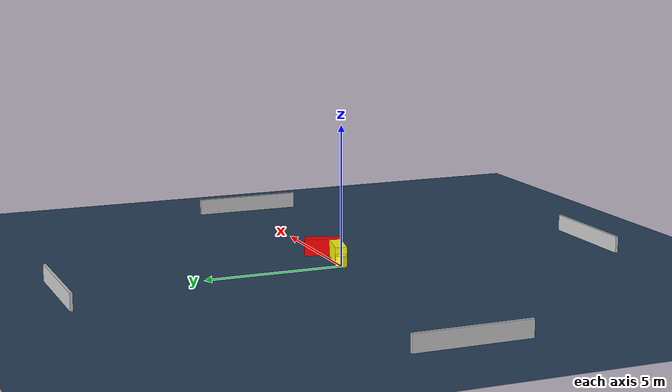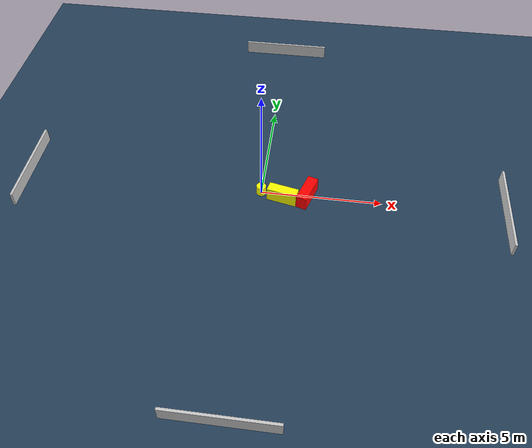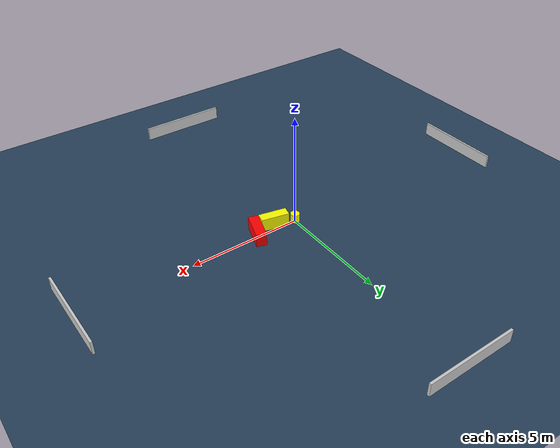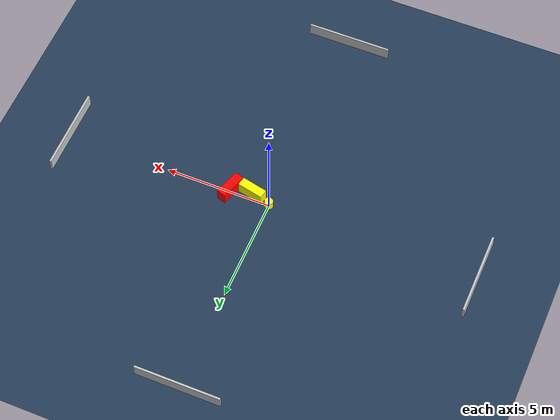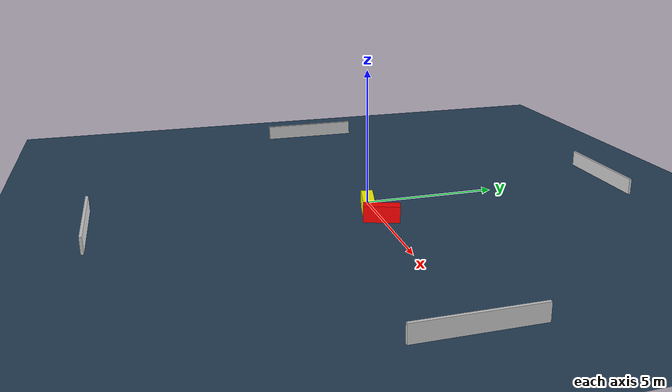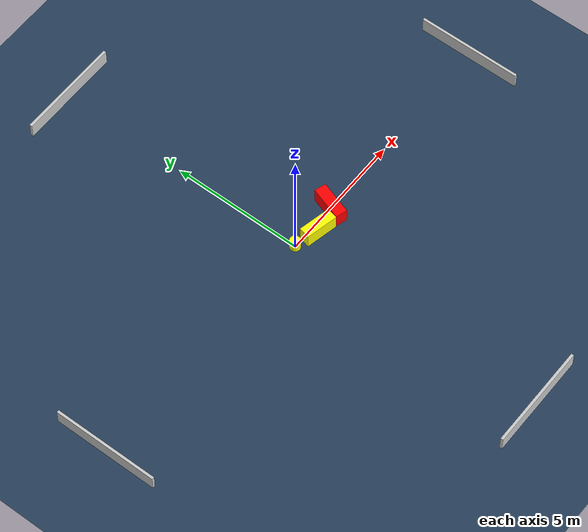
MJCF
<?xml version="1.0" ?>
<mujoco model="generated_environment">
  <option timestep="0.01" integrator="RK4" cone="elliptic"/>
  <default>
    <geom density="1"/>
  </default>
  <asset>
    <texture builtin="gradient" height="3072" name="skybox" rgb1="0.3 0.5 0.7" rgb2="0 0 0" type="skybox" width="512"/>
    <texture builtin="checker" height="300" name="groundplane" rgb1="0.2 0.3 0.4" rgb2="0.1 0.2 0.3" type="2d" width="300"/>
    <material name="groundplane" reflectance="0.2" texrepeat="5 5" texture="groundplane"/>
  </asset>
  <worldbody>
    <light dir="0 0 -1" directional="true" pos="0 0 1.5"/>
    <geom condim="3" friction="0.5 0.005 0.001" material="groundplane" name="floor" pos="0 0 0" size="0 0 0.05" type="plane"/>
    <body name="walls">
      <geom name="wall_1" condim="4" pos="-10.0 0.0 0.3" rgba="0.800000011920929 0.800000011920929 0.800000011920929 1.0" size="0.05 2.0 0.3" type="box"/>
      <geom name="wall_2" condim="4" pos="10.0 0.0 0.3" rgba="0.800000011920929 0.800000011920929 0.800000011920929 1.0" size="0.05 2.0 0.3" type="box"/>
      <geom name="wall_3" condim="4" pos="0.0 -10.0 0.3" rgba="0.800000011920929 0.800000011920929 0.800000011920929 1.0" size="2.0 0.05 0.3" type="box"/>
      <geom name="wall_4" condim="4" pos="0.0 10.0 0.3" rgba="0.800000011920929 0.800000011920929 0.800000011920929 1.0" size="2.0 0.05 0.3" type="box"/>
    </body>
    <body name="robot">
      <joint name="joint_x" type="slide" pos="0 0 0" axis="1 0 0"/>
      <joint name="joint_y" type="slide" pos="0 0 0" axis="0 1 0"/>
      <geom name="robot" type="cylinder" pos="0.0 0.0 0.2" size="0.2 0.2 0.0" mass="5.0" friction="1.0 0.005 0.0001" condim="4" rgba="1.0 1.0 0.0 1.0"/>
    </body>
    <body name="obstacle_1_movable">
      <geom name="obstacle_1_movable" condim="4" pos="0.923024171393991 -0.2662165077484918 0.3" euler="0 0 167.56858728422517" friction="0.0 0.005 0.001" rgba="1.0 1.0 0.0 1.0" size="0.621698681649911 0.2140377699195696 0.3" type="box" mass="0.1"/>
      <joint type="free"/>
    </body>
    <body name="obstacle_2_static">
      <geom name="obstacle_2_static" condim="4" pos="1.9111310088486024 -0.049622122410974086 0.3" euler="0 0 161.8680184321399" friction="0.0 0.005 0.001" rgba="1.0 0.0 0.0 1.0" size="0.2237895501719685 0.6472400885643563 0.3" type="box"/>
    </body>
  </worldbody>
  <actuator>
    <motor name="actuator_x" joint="joint_x" gear="1" ctrlrange="-1 1"/>
    <motor name="actuator_y" joint="joint_y" gear="1" ctrlrange="-1 1"/>
  </actuator>
</mujoco>
